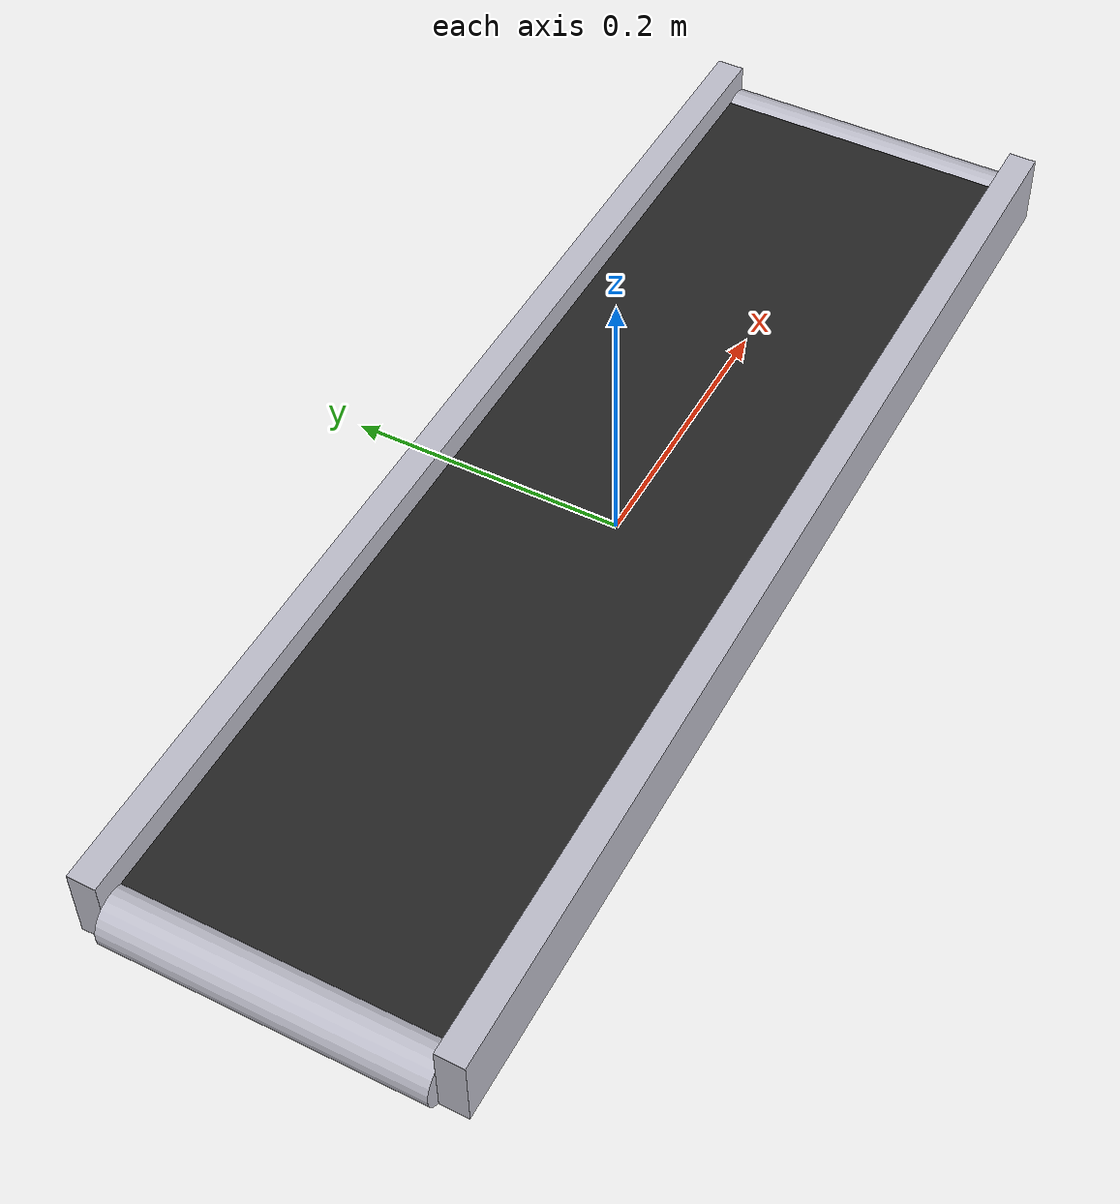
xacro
<?xml version="1.0" ?>
<robot name="new_conveyor" xmlns:xacro="http://www.ros.org/wiki/xacro">

    <material name="belt_dark">
        <color rgba="0.15 0.15 0.15 1.0"/>
    </material>
    <material name="rail_metallic">
        <color rgba="0.75 0.75 0.8 1.0"/>
    </material>

    <link name="conveyor_track_link">
        <!-- Central Belt Bed -->
        <visual>
            <origin xyz="0 0 0.0175" rpy="0 0 0"/>
            <geometry>
                <box size="0.82 0.22 0.035"/>
            </geometry>
            <material name="belt_dark"/>
        </visual>
        <collision>
            <origin xyz="0 0 0.0175" rpy="0 0 0"/>
            <geometry>
                <box size="0.82 0.22 0.035"/>
            </geometry>
        </collision>

        <!-- Left Guard Rail -->
        <visual>
            <origin xyz="0 0.12 0.0275" rpy="0 0 0"/>
            <geometry>
                <box size="0.84 0.02 0.055"/>
            </geometry>
            <material name="rail_metallic"/>
        </visual>
        <collision>
            <origin xyz="0 0.12 0.0275" rpy="0 0 0"/>
            <geometry>
                <box size="0.84 0.02 0.055"/>
            </geometry>
        </collision>

        <!-- Right Guard Rail -->
        <visual>
            <origin xyz="0 -0.12 0.0275" rpy="0 0 0"/>
            <geometry>
                <box size="0.84 0.02 0.055"/>
            </geometry>
            <material name="rail_metallic"/>
        </visual>
        <collision>
            <origin xyz="0 -0.12 0.0275" rpy="0 0 0"/>
            <geometry>
                <box size="0.84 0.02 0.055"/>
            </geometry>
        </collision>

        <!-- Front End Roller -->
        <visual>
            <origin xyz="0.41 0 0.0175" rpy="1.5708 0 0"/>
            <geometry>
                <cylinder radius="0.02" length="0.22"/>
            </geometry>
            <material name="rail_metallic"/>
        </visual>

        <!-- Back End Roller -->
        <visual>
            <origin xyz="-0.41 0 0.0175" rpy="1.5708 0 0"/>
            <geometry>
                <cylinder radius="0.02" length="0.22"/>
            </geometry>
            <material name="rail_metallic"/>
        </visual>

        <inertial>
            <origin xyz="0 0 0.0175" rpy="0 0 0"/>
            <mass value="15.0"/>
            <inertia ixx="0.1" ixy="0.0" ixz="0.0" iyy="0.1" iyz="0.0" izz="0.1"/>
        </inertial>
    </link>

    <gazebo reference="conveyor_track_link">
        <material>Gazebo/DarkGrey</material>
    </gazebo>

</robot>
